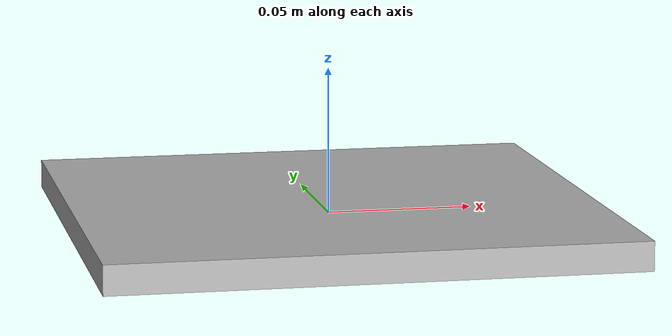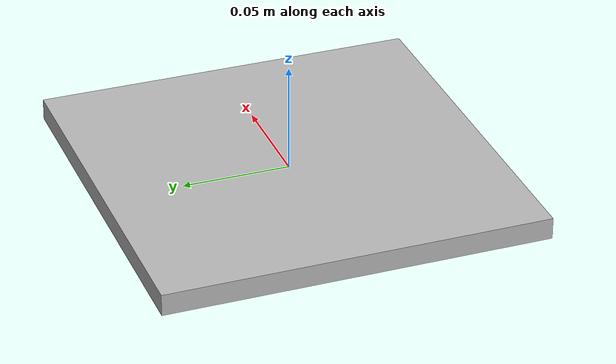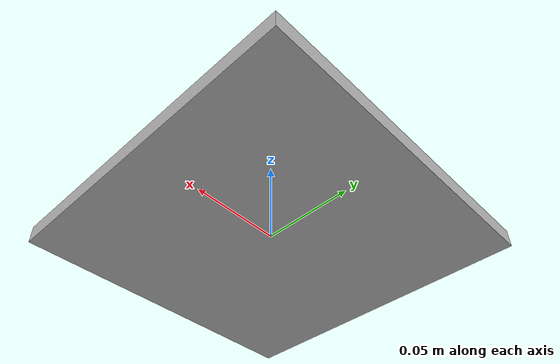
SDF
<?xml version='1.0'?>
<sdf version='1.6'>
  <model name='Apriltag36_11_00001_small'>
    <link name='main'>
    <pose frame=''>0 0 0 0 0 0</pose>
      <visual name='main_Visual'>
        <geometry>
          <box>
          <size>0.178 0.178 0.01</size>
          </box>
        </geometry>
           <material>
          <script>
            <uri>model://Apriltag36_11_00001/materials/scripts</uri>
            <uri>model://Apriltag36_11_00001/materials/textures</uri>
            <name>Apriltag36_11_00001</name>
          </script>
        </material>
      </visual>
     </link>
    <static>1</static>
  </model>
</sdf>
